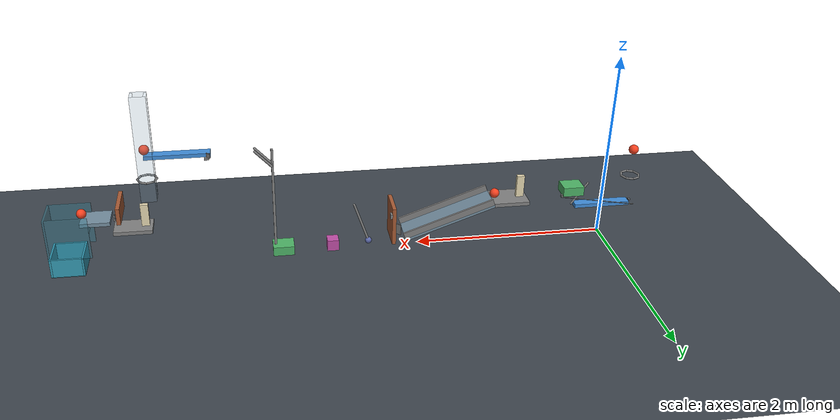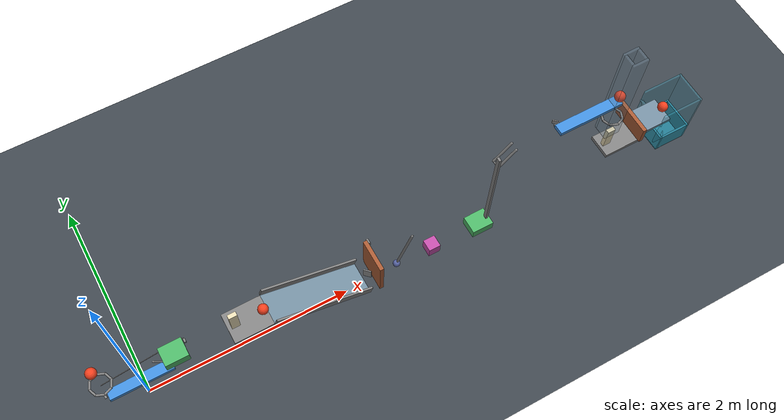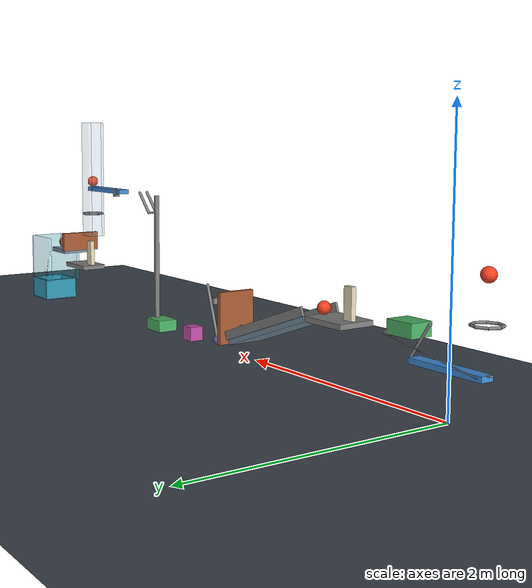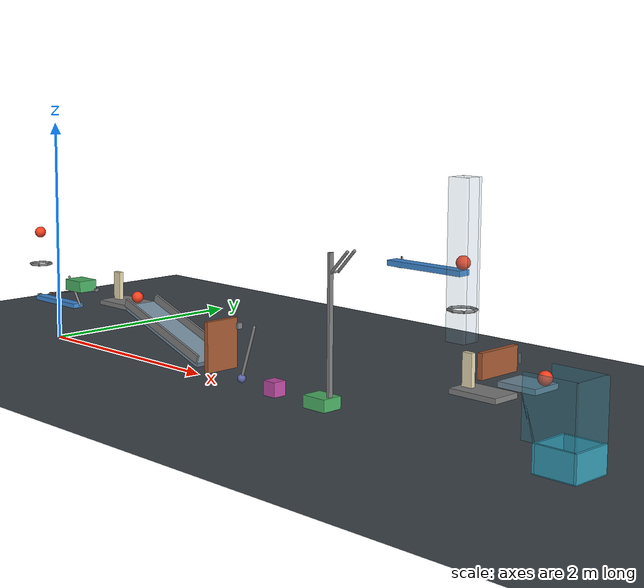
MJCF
<mujoco model="complete_chain_reaction">
  <compiler angle="degree" autolimits="true" inertiafromgeom="auto"/>
  <option timestep="0.002" gravity="0 0 -9.81" integrator="implicitfast" solver="Newton" iterations="100" tolerance="1e-10" cone="elliptic" impratio="5"/>
  <size njmax="3000" nconmax="1000"/>

  <!-- All initial velocities are zero. No motors or timed triggers are used. -->
  <!-- Contact damping ratio 0.71565 approximates restitution 0.04. -->
  <!-- Auxiliary springs are retained by passive contact-released latches. -->

  <worldbody>
    <light name="main_light" pos="2 -3 7" dir="0 0 -1" directional="true"/>
    <camera name="overview" pos="2.8 -7 4" xyaxes="1 0 0 0 .447214 .894427"/>
    <geom name="floor" type="plane" size="8 3 .1" friction=".72 .005 .0001" solref=".004 .71565" rgba=".24 .27 .30 1"/>

    <body name="ball1" pos="-.285 0 .962020143">
      <freejoint name="ball1_free"/>
      <geom name="ball1_sphere" type="sphere" size=".05" mass=".20" friction=".72 .005 .0001" solref=".004 .71565" rgba=".95 .25 .12 1"/>
    </body>

    <!-- Octagonal capsule ring, with minimum clear diameter 0.16 m. -->
    <body name="ring1" pos="-.285 0 .662020143">
      <geom name="ring1_1" type="capsule" fromto=".097415298 0 0 .068883018 .068883018 0" size=".01" friction=".72 .005 .0001" solref=".004 .71565"/>
      <geom name="ring1_2" type="capsule" fromto=".068883018 .068883018 0 0 .097415298 0" size=".01" friction=".72 .005 .0001" solref=".004 .71565"/>
      <geom name="ring1_3" type="capsule" fromto="0 .097415298 0 -.068883018 .068883018 0" size=".01" friction=".72 .005 .0001" solref=".004 .71565"/>
      <geom name="ring1_4" type="capsule" fromto="-.068883018 .068883018 0 -.097415298 0 0" size=".01" friction=".72 .005 .0001" solref=".004 .71565"/>
      <geom name="ring1_5" type="capsule" fromto="-.097415298 0 0 -.068883018 -.068883018 0" size=".01" friction=".72 .005 .0001" solref=".004 .71565"/>
      <geom name="ring1_6" type="capsule" fromto="-.068883018 -.068883018 0 0 -.097415298 0" size=".01" friction=".72 .005 .0001" solref=".004 .71565"/>
      <geom name="ring1_7" type="capsule" fromto="0 -.097415298 0 .068883018 -.068883018 0" size=".01" friction=".72 .005 .0001" solref=".004 .71565"/>
      <geom name="ring1_8" type="capsule" fromto=".068883018 -.068883018 0 .097415298 0 0" size=".01" friction=".72 .005 .0001" solref=".004 .71565"/>
    </body>

    <body name="lever1" pos="0 0 .342020143">
      <joint name="lever1_hinge" type="hinge" axis="0 -1 0" range="0 45" damping=".04" solreflimit=".004 1" solimplimit=".99 .999 .001"/>
      <geom name="lever1_beam" type="box" size=".30 .05 .02" mass=".50" friction=".72 .005 .0001" solref=".004 .71565" rgba=".25 .55 .85 1"/>
    </body>

    <!-- Steep underside cam avoids the original shallow-cam self-locking geometry. -->
    <body name="cart1" pos=".35 0 .542220143">
      <joint name="cart1_slide" type="slide" axis="1 0 0" range="0 .46" damping=".20" stiffness="5" springref=".46" solreflimit=".004 1"/>
      <geom name="cart1_chassis" type="box" size=".11 .09 .05" mass=".50" friction=".72 .005 .0001" solref=".004 .71565" rgba=".30 .70 .40 1"/>
      <geom name="cart1_drive_cam" type="capsule" fromto="-.18 0 .05 -.02 0 -.19" size=".01" mass="0" friction=".72 .005 .0001" solref=".004 .71565"/>
    </body>

    <!-- Ball1 depresses this receiver beside the lever's left tip. -->
    <!-- Dry slide friction prevents the latch falling open under its own weight. -->
    <body name="cart1_latch" pos="0 0 .342020143">
      <joint name="cart1_latch_slide" type="slide" axis="0 0 -1" range="0 .28" damping=".20" frictionloss=".30"/>
      <geom name="cart1_latch_receiver" type="box" pos="-.32 0 .021698730" size=".01 .018 .005" mass=".025" friction=".72 .005 .0001" solref=".004 .71565"/>
      <geom name="cart1_latch_pin" type="box" pos=".475 .080 .158" size=".009 .018 .012" mass="0" condim="1" friction=".72 .005 .0001" solref=".004 .71565" solimp=".99 .999 .001"/>
      <geom name="cart1_latch_link" type="capsule" fromto="-.32 .11 .021698730 .475 .11 .158" size=".004" mass="0" friction=".72 .005 .0001" solref=".004 .71565"/>
    </body>

    <!-- Horizontal starting perch prevents ball2 moving before domino1 arrives. -->
    <body name="upper_platform" pos="1.035 0 .472020143">
      <geom name="upper_platform_deck" type="box" size=".19 .15 .02" friction=".72 .005 .0001" solref=".004 .71565"/>
    </body>

    <body name="domino1" pos=".92 0 .612220143">
      <freejoint name="domino1_free"/>
      <geom name="domino1_box" type="box" size=".04 .02 .12" mass=".25" friction=".72 .005 .0001" solref=".004 .71565" rgba=".90 .85 .70 1"/>
    </body>

    <body name="ball2" pos="1.19 0 .542220143">
      <freejoint name="ball2_free"/>
      <geom name="ball2_sphere" type="sphere" size=".05" mass=".20" friction=".72 .005 .0001" solref=".004 .71565" rgba=".95 .25 .12 1"/>
    </body>

    <!-- Main ramp is 1.00 m long, 0.30 m wide, and inclined at 20 degrees. -->
    <!-- Its low top-surface endpoint is (2.164692621,0,0.15). -->
    <body name="ramp1">
      <geom name="ramp1_surface" type="box" pos="1.688005908 0 .302216219" euler="0 20 0" size=".50 .15 .02" friction=".72 .005 .0001" solref=".004 .71565" rgba=".45 .55 .62 1"/>
      <geom name="ramp1_left_rail" type="box" pos="1.706817016 .16 .353899313" euler="0 20 0" size=".50 .01 .035" friction=".72 .005 .0001" solref=".004 .71565"/>
      <geom name="ramp1_right_rail" type="box" pos="1.706817016 -.16 .353899313" euler="0 20 0" size=".50 .01 .035" friction=".72 .005 .0001" solref=".004 .71565"/>
    </body>

    <!-- Door spring supplies energy for the subsequent floor-friction work. -->
    <body name="door1" pos="2.284692621 0 .09">
      <joint name="door1_hinge" type="hinge" axis="0 1 0" range="0 70" damping=".04" stiffness="75" springref="70" solreflimit=".004 1" solimplimit=".99 .999 .001"/>
      <geom name="door1_panel" type="box" pos="0 0 .21" size=".02 .16 .21" mass=".45" friction=".72 .005 .0001" solref=".004 .71565" rgba=".65 .35 .20 1"/>
    </body>

    <!-- Ball2 pushes the diagonal paddle, withdrawing the transverse bolt. -->
    <!-- Normal-only bolt contact represents a bearing-supported locking pin. -->
    <body name="door1_latch" pos="2.284692621 0 0">
      <joint name="door1_latch_slide" type="slide" axis="0 1 0" range="0 .085" damping=".20" frictionloss=".012"/>
      <geom name="door1_latch_paddle" type="box" pos="-.065 0 .18" euler="0 0 45" size=".006 .04 .06" mass=".025" friction=".72 .005 .0001" solref=".004 .71565"/>
      <geom name="door1_latch_bolt" type="box" pos=".035 .167 .44" size=".011 .025 .025" mass="0" condim="1" friction=".72 .005 .0001" solref=".004 .71565" solimp=".99 .999 .001"/>
    </body>

    <!-- Pivot-to-lowest-point length is 0.50 m; total mass is 0.35 kg. -->
    <!-- Initial cant is held by dry friction until the door strikes. -->
    <!-- Joint travel changes the cant from -19 to +19 degrees. -->
    <body name="pendulum1" pos="2.684692621 0 .505" euler="0 19 0">
      <joint name="pendulum1_hinge" type="hinge" axis="0 -1 0" range="0 38" damping=".04" frictionloss=".46" solreflimit=".004 1" solimplimit=".99 .999 .001"/>
      <geom name="pendulum1_rod" type="capsule" fromto="0 0 0 0 0 -.465" size=".012" mass=".10" friction=".72 .005 .0001" solref=".004 .71565"/>
      <geom name="pendulum1_bob" type="sphere" pos="0 0 -.465" size=".035" mass=".25" friction=".72 .005 .0001" solref=".004 .71565" rgba=".35 .40 .65 1"/>
    </body>

    <!-- Bob first meets the cube near its centre height at approximately 36 degrees. -->
    <body name="block1" pos="2.915645464 0 .0602">
      <freejoint name="block1_free"/>
      <geom name="block1_cube" type="box" size=".06 .06 .06" mass=".35" friction=".72 .005 .0001" solref=".004 .71565" rgba=".75 .30 .65 1"/>
    </body>

    <!-- Block1's front face reaches cart2 after 0.35 m of translation. -->
    <body name="cart2" pos="3.435645464 0 .0502">
      <joint name="cart2_slide" type="slide" axis="1 0 0" range="0 .46" damping=".20" solreflimit=".004 1"/>
      <geom name="cart2_chassis" type="box" size=".11 .09 .05" mass=".50" friction=".72 .005 .0001" solref=".004 .71565" rgba=".30 .70 .40 1"/>
      <geom name="cart2_striker_mast" type="box" pos=".08 0 .58" size=".012 .02 .57" mass="0" friction=".72 .005 .0001" solref=".004 .71565"/>
      <geom name="cart2_drive_cam" type="capsule" fromto=".09 0 .9998 .25 0 1.1698" size=".012" mass="0" friction=".72 .005 .0001" solref=".004 .71565"/>
      <geom name="cart2_latch_cam" type="capsule" fromto=".09 .075 .9998 .25 .075 1.1698" size=".012" mass="0" friction=".72 .005 .0001" solref=".004 .71565"/>
      <geom name="cart2_cam_crossbar" type="capsule" fromto=".09 0 .9998 .09 .075 .9998" size=".008" mass="0" friction=".72 .005 .0001" solref=".004 .71565"/>
    </body>

    <!-- Cart2's nose reaches the left end after 0.42 m of translation. -->
    <body name="seesaw1" pos="4.442645464 0 1.20">
      <joint name="seesaw1_hinge" type="hinge" axis="0 -1 0" range="0 42" damping=".04" stiffness="3" springref="42" solreflimit=".004 1" solimplimit=".99 .999 .001"/>
      <geom name="seesaw1_beam" type="box" size=".325 .05 .02" mass=".55" friction=".72 .005 .0001" solref=".004 .71565" rgba=".25 .55 .85 1"/>
    </body>

    <body name="seesaw1_latch" pos="4.442645464 0 1.21">
      <joint name="seesaw1_latch_slide" type="slide" axis="0 1 0" range="0 .07" damping=".20" frictionloss=".012"/>
      <geom name="seesaw1_latch_paddle" type="box" pos="-.3037 .082 0" euler="0 0 45" size=".005 .025 .022" mass=".025" friction=".72 .005 .0001" solref=".004 .71565"/>
      <geom name="seesaw1_latch_bolt" type="box" pos="-.285 .060 -.042" size=".025 .020 .010" mass="0" condim="1" friction=".72 .005 .0001" solref=".004 .71565" solimp=".99 .999 .001"/>
    </body>

    <body name="ball3" pos="4.757645464 0 1.27">
      <freejoint name="ball3_free"/>
      <geom name="ball3_sphere" type="sphere" size=".05" mass=".20" contype="3" conaffinity="3" friction=".72 .005 .0001" solref=".004 .71565" rgba=".95 .25 .12 1"/>
    </body>

    <!-- Idealized ball-only guide faces permit the beam to retract through the guide. -->
    <body name="ball3_guide" pos="4.757645464 0 1.29">
      <geom name="ball3_guide_left" type="box" pos="-.066 0 0" size=".012 .054 .56" contype="2" conaffinity="2" friction=".72 .005 .0001" solref=".004 .71565" rgba=".50 .65 .75 .22"/>
      <geom name="ball3_guide_right" type="box" pos=".066 0 0" size=".012 .054 .56" contype="2" conaffinity="2" friction=".72 .005 .0001" solref=".004 .71565" rgba=".50 .65 .75 .22"/>
      <geom name="ball3_guide_front" type="box" pos="0 -.066 0" size=".078 .012 .56" contype="2" conaffinity="2" friction=".72 .005 .0001" solref=".004 .71565" rgba=".50 .65 .75 .22"/>
      <geom name="ball3_guide_back" type="box" pos="0 .066 0" size=".078 .012 .56" contype="2" conaffinity="2" friction=".72 .005 .0001" solref=".004 .71565" rgba=".50 .65 .75 .22"/>
    </body>

    <body name="ring2" pos="4.757645464 0 .95">
      <geom name="ring2_1" type="capsule" fromto=".097415298 0 0 .068883018 .068883018 0" size=".01" friction=".72 .005 .0001" solref=".004 .71565"/>
      <geom name="ring2_2" type="capsule" fromto=".068883018 .068883018 0 0 .097415298 0" size=".01" friction=".72 .005 .0001" solref=".004 .71565"/>
      <geom name="ring2_3" type="capsule" fromto="0 .097415298 0 -.068883018 .068883018 0" size=".01" friction=".72 .005 .0001" solref=".004 .71565"/>
      <geom name="ring2_4" type="capsule" fromto="-.068883018 .068883018 0 -.097415298 0 0" size=".01" friction=".72 .005 .0001" solref=".004 .71565"/>
      <geom name="ring2_5" type="capsule" fromto="-.097415298 0 0 -.068883018 -.068883018 0" size=".01" friction=".72 .005 .0001" solref=".004 .71565"/>
      <geom name="ring2_6" type="capsule" fromto="-.068883018 -.068883018 0 0 -.097415298 0" size=".01" friction=".72 .005 .0001" solref=".004 .71565"/>
      <geom name="ring2_7" type="capsule" fromto="0 -.097415298 0 .068883018 -.068883018 0" size=".01" friction=".72 .005 .0001" solref=".004 .71565"/>
      <geom name="ring2_8" type="capsule" fromto=".068883018 -.068883018 0 .097415298 0 0" size=".01" friction=".72 .005 .0001" solref=".004 .71565"/>
    </body>

    <!-- Offset upper-corner impact supplies a forward tipping impulse. -->
    <!-- Nominal ball-centre contact height is 0.24 m below ring2. -->
    <body name="domino2" pos="4.822645464 0 .546698730">
      <freejoint name="domino2_free"/>
      <geom name="domino2_box" type="box" size=".04 .02 .12" mass=".25" friction=".72 .005 .0001" solref=".004 .71565" rgba=".90 .85 .70 1"/>
    </body>

    <body name="domino2_platform" pos="4.947645464 0 .406698730">
      <geom name="domino2_platform_deck" type="box" size=".195 .12 .02" friction=".72 .005 .0001" solref=".004 .71565"/>
    </body>

    <!-- Vertical-axis panel swings clockwise when viewed from above. -->
    <!-- Panel bottom clears the shelf top by 1 mm. -->
    <body name="flap1" pos="5.062645464 -.19 .641">
      <joint name="flap1_hinge" type="hinge" axis="0 0 -1" range="0 60" damping=".04" stiffness=".6" springref="60" solreflimit=".004 1" solimplimit=".99 .999 .001"/>
      <geom name="flap1_panel" type="box" pos="0 .19 0" size=".02 .19 .09" mass=".28" friction=".72 .005 .0001" solref=".004 .71565" rgba=".65 .35 .20 1"/>
    </body>

    <!-- Dry-friction breakaway pin holds the flap's spring preload. -->
    <!-- Domino2's impact moves the pin until the rotating distal edge clears it. -->
    <body name="flap1_latch" pos="5.097645464 .1958 .641">
      <joint name="flap1_latch_slide" type="slide" axis="1 0 0" range="0 .08" damping=".20" frictionloss="1.7"/>
      <geom name="flap1_latch_pin" type="box" size=".006 .006 .035" mass=".012" condim="1" friction=".72 .005 .0001" solref=".004 .71565" solimp=".99 .999 .001"/>
    </body>

    <body name="ball4" pos="5.444645464 0 .6002">
      <freejoint name="ball4_free"/>
      <geom name="ball4_sphere" type="sphere" size=".05" mass=".20" friction=".72 .005 .0001" solref=".004 .71565" rgba=".95 .25 .12 1"/>
    </body>

    <body name="shelf1" pos="5.309645464 0 .53">
      <geom name="shelf1_board" type="box" size=".15 .125 .02" friction=".72 .005 .0001" solref=".004 .71565" rgba=".45 .55 .62 1"/>
    </body>

    <!-- Cup interior: 0.30 by 0.30 m, with 0.20 m high, 0.02 m thick walls. -->
    <!-- The inner floor is at z=0; shelf top is 0.55 m above it. -->
    <body name="cup1" pos="5.624645464 .035 0">
      <geom name="cup1_base" type="box" pos="0 0 -.01" size=".17 .17 .01" friction=".72 .005 .0001" solref=".004 .71565" rgba=".20 .60 .70 1"/>
      <geom name="cup1_left_wall" type="box" pos="-.16 0 .10" size=".01 .17 .10" friction=".72 .005 .0001" solref=".004 .71565" rgba=".20 .60 .70 1"/>
      <geom name="cup1_right_wall" type="box" pos=".16 0 .10" size=".01 .17 .10" friction=".72 .005 .0001" solref=".004 .71565" rgba=".20 .60 .70 1"/>
      <geom name="cup1_front_wall" type="box" pos="0 -.16 .10" size=".15 .01 .10" friction=".72 .005 .0001" solref=".004 .71565" rgba=".20 .60 .70 1"/>
      <geom name="cup1_back_wall" type="box" pos="0 .16 .10" size=".15 .01 .10" friction=".72 .005 .0001" solref=".004 .71565" rgba=".20 .60 .70 1"/>
    </body>

    <!-- Separate catch funnel intercepts excess horizontal motion above the cup. -->
    <!-- The flared left face guides a slow departure from the shelf into the cup. -->
    <body name="catch_funnel">
      <geom name="catch_funnel_left" type="box" pos="5.415100664 .035 .357017250" euler="0 -17.354025 0" size=".01 .17 .167630546" friction=".72 .005 .0001" solref=".004 .71565" rgba=".20 .60 .70 .35"/>
      <geom name="catch_funnel_right" type="box" pos="5.784645464 .035 .425" size=".01 .17 .225" friction=".72 .005 .0001" solref=".004 .71565" rgba=".20 .60 .70 .35"/>
      <geom name="catch_funnel_front" type="box" pos="5.574645464 -.125 .425" size=".21 .01 .225" friction=".72 .005 .0001" solref=".004 .71565" rgba=".20 .60 .70 .35"/>
      <geom name="catch_funnel_back" type="box" pos="5.574645464 .195 .425" size=".21 .01 .225" friction=".72 .005 .0001" solref=".004 .71565" rgba=".20 .60 .70 .35"/>
    </body>
  </worldbody>

  <keyframe>
    <key name="start" time="0"/>
  </keyframe>
</mujoco>
